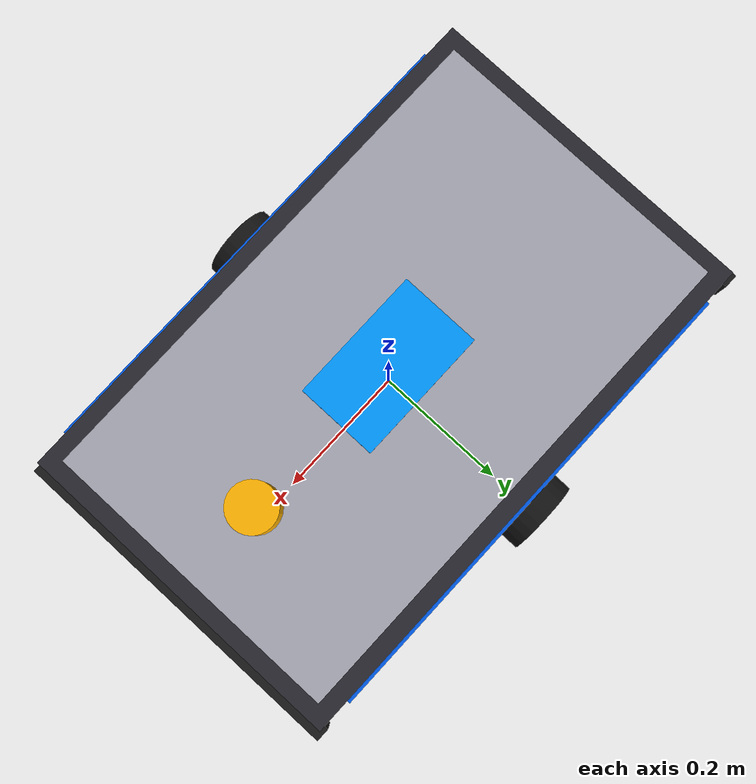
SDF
<?xml version="1.0" ?>
<sdf version="1.6">
  <model name="aria_agv">
    <static>false</static>

    <link name="base_footprint"/>

    <link name="base_link">
      <pose>0 0 0.08 0 0 0</pose>
      <inertial>
        <mass>80.0</mass>
        <inertia>
          <ixx>1.5</ixx><iyy>2.0</iyy><izz>2.5</izz>
          <ixy>0</ixy><ixz>0</ixz><iyz>0</iyz>
        </inertia>
      </inertial>

      <!-- Main chassis - dark gunmetal -->
      <collision name="chassis_col">
        <geometry><box><size>0.8 0.5 0.14</size></box></geometry>
      </collision>
      <visual name="chassis">
        <geometry><box><size>0.8 0.5 0.14</size></box></geometry>
        <material>
          <ambient>0.12 0.12 0.14 1</ambient>
          <diffuse>0.15 0.15 0.18 1</diffuse>
          <specular>0.4 0.4 0.4 1</specular>
        </material>
      </visual>

      <!-- Top deck - brushed aluminum -->
      <visual name="top_deck">
        <pose>0 0 0.075 0 0 0</pose>
        <geometry><box><size>0.75 0.45 0.01</size></box></geometry>
        <material>
          <ambient>0.55 0.55 0.6 1</ambient>
          <diffuse>0.65 0.65 0.7 1</diffuse>
          <specular>0.8 0.8 0.8 1</specular>
        </material>
      </visual>

      <!-- Orange safety stripe front -->
      <visual name="stripe_front">
        <pose>0.38 0 0.02 0 0 0</pose>
        <geometry><box><size>0.04 0.5 0.1</size></box></geometry>
        <material>
          <ambient>0.9 0.4 0.0 1</ambient>
          <diffuse>1.0 0.45 0.0 1</diffuse>
          <emissive>0.3 0.1 0.0 1</emissive>
        </material>
      </visual>

      <!-- Orange safety stripe rear -->
      <visual name="stripe_rear">
        <pose>-0.38 0 0.02 0 0 0</pose>
        <geometry><box><size>0.04 0.5 0.1</size></box></geometry>
        <material>
          <ambient>0.9 0.4 0.0 1</ambient>
          <diffuse>1.0 0.45 0.0 1</diffuse>
          <emissive>0.3 0.1 0.0 1</emissive>
        </material>
      </visual>

      <!-- Blue company stripe -->
      <visual name="stripe_side_left">
        <pose>0 0.24 0.02 0 0 0</pose>
        <geometry><box><size>0.7 0.03 0.08</size></box></geometry>
        <material>
          <ambient>0.0 0.3 0.8 1</ambient>
          <diffuse>0.0 0.35 0.9 1</diffuse>
          <emissive>0.0 0.05 0.2 1</emissive>
        </material>
      </visual>
      <visual name="stripe_side_right">
        <pose>0 -0.24 0.02 0 0 0</pose>
        <geometry><box><size>0.7 0.03 0.08</size></box></geometry>
        <material>
          <ambient>0.0 0.3 0.8 1</ambient>
          <diffuse>0.0 0.35 0.9 1</diffuse>
          <emissive>0.0 0.05 0.2 1</emissive>
        </material>
      </visual>

      <!-- Safety beacon light -->
      <visual name="beacon">
        <pose>0.25 0 0.1 0 0 0</pose>
        <geometry><cylinder><radius>0.035</radius><length>0.07</length></cylinder></geometry>
        <material>
          <ambient>1.0 0.6 0.0 1</ambient>
          <diffuse>1.0 0.7 0.0 1</diffuse>
          <emissive>0.8 0.4 0.0 1</emissive>
        </material>
      </visual>

      <!-- ARIA logo plate -->
      <visual name="logo_plate">
        <pose>0 0 0.082 0 0 0</pose>
        <geometry><box><size>0.2 0.12 0.002</size></box></geometry>
        <material>
          <ambient>0.0 0.5 0.9 1</ambient>
          <diffuse>0.0 0.6 1.0 1</diffuse>
          <emissive>0.0 0.2 0.4 1</emissive>
        </material>
      </visual>

      <!-- Bumper front -->
      <visual name="bumper_front">
        <pose>0.41 0 -0.02 0 0 0</pose>
        <geometry><box><size>0.02 0.52 0.06</size></box></geometry>
        <material>
          <ambient>0.08 0.08 0.08 1</ambient>
          <diffuse>0.1 0.1 0.1 1</diffuse>
        </material>
      </visual>

      <!-- Bumper rear -->
      <visual name="bumper_rear">
        <pose>-0.41 0 -0.02 0 0 0</pose>
        <geometry><box><size>0.02 0.52 0.06</size></box></geometry>
        <material>
          <ambient>0.08 0.08 0.08 1</ambient>
          <diffuse>0.1 0.1 0.1 1</diffuse>
        </material>
      </visual>
    </link>

    <joint name="base_joint" type="fixed">
      <parent>base_footprint</parent>
      <child>base_link</child>
    </joint>

    <!-- Left drive wheel - rubber black -->
    <link name="wheel_left">
      <pose>0.0 0.26 0.04 -1.5708 0 0</pose>
      <inertial><mass>2.0</mass>
        <inertia><ixx>0.02</ixx><iyy>0.02</iyy><izz>0.02</izz></inertia>
      </inertial>
      <collision name="col">
        <geometry><cylinder><radius>0.055</radius><length>0.055</length></cylinder></geometry>
        <surface><friction><ode><mu>100</mu><mu2>50</mu2></ode></friction></surface>
      </collision>
      <visual name="tire">
        <geometry><cylinder><radius>0.055</radius><length>0.055</length></cylinder></geometry>
        <material><ambient>0.05 0.05 0.05 1</ambient><diffuse>0.08 0.08 0.08 1</diffuse>
          <specular>0.1 0.1 0.1 1</specular></material>
      </visual>
      <visual name="hub">
        <pose>0 0 0 0 0 0</pose>
        <geometry><cylinder><radius>0.025</radius><length>0.056</length></cylinder></geometry>
        <material><ambient>0.5 0.5 0.55 1</ambient><diffuse>0.6 0.6 0.65 1</diffuse></material>
      </visual>
    </link>
    <joint name="wheel_left_joint" type="revolute">
      <parent>base_link</parent><child>wheel_left</child>
      <axis><xyz>0 0 1</xyz><limit><effort>200</effort></limit></axis>
    </joint>

    <!-- Right drive wheel -->
    <link name="wheel_right">
      <pose>0.0 -0.26 0.04 -1.5708 0 0</pose>
      <inertial><mass>2.0</mass>
        <inertia><ixx>0.02</ixx><iyy>0.02</iyy><izz>0.02</izz></inertia>
      </inertial>
      <collision name="col">
        <geometry><cylinder><radius>0.055</radius><length>0.055</length></cylinder></geometry>
        <surface><friction><ode><mu>100</mu><mu2>50</mu2></ode></friction></surface>
      </collision>
      <visual name="tire">
        <geometry><cylinder><radius>0.055</radius><length>0.055</length></cylinder></geometry>
        <material><ambient>0.05 0.05 0.05 1</ambient><diffuse>0.08 0.08 0.08 1</diffuse>
          <specular>0.1 0.1 0.1 1</specular></material>
      </visual>
      <visual name="hub">
        <geometry><cylinder><radius>0.025</radius><length>0.056</length></cylinder></geometry>
        <material><ambient>0.5 0.5 0.55 1</ambient><diffuse>0.6 0.6 0.65 1</diffuse></material>
      </visual>
    </link>
    <joint name="wheel_right_joint" type="revolute">
      <parent>base_link</parent><child>wheel_right</child>
      <axis><xyz>0 0 1</xyz><limit><effort>200</effort></limit></axis>
    </joint>

    <!-- Front caster -->
    <link name="caster_front">
      <pose>0.32 0 0.018 0 0 0</pose>
      <inertial><mass>0.5</mass>
        <inertia><ixx>0.001</ixx><iyy>0.001</iyy><izz>0.001</izz></inertia>
      </inertial>
      <collision name="col">
        <geometry><sphere><radius>0.022</radius></sphere></geometry>
        <surface><friction><ode><mu>0.01</mu><mu2>0.01</mu2></ode></friction></surface>
      </collision>
      <visual name="v">
        <geometry><sphere><radius>0.022</radius></sphere></geometry>
        <material><ambient>0.3 0.3 0.3 1</ambient></material>
      </visual>
    </link>
    <joint name="caster_front_joint" type="fixed">
      <parent>base_link</parent><child>caster_front</child>
    </joint>

    <!-- Rear caster -->
    <link name="caster_rear">
      <pose>-0.32 0 0.018 0 0 0</pose>
      <inertial><mass>0.5</mass>
        <inertia><ixx>0.001</ixx><iyy>0.001</iyy><izz>0.001</izz></inertia>
      </inertial>
      <collision name="col">
        <geometry><sphere><radius>0.022</radius></sphere></geometry>
        <surface><friction><ode><mu>0.01</mu><mu2>0.01</mu2></ode></friction></surface>
      </collision>
      <visual name="v">
        <geometry><sphere><radius>0.022</radius></sphere></geometry>
        <material><ambient>0.3 0.3 0.3 1</ambient></material>
      </visual>
    </link>
    <joint name="caster_rear_joint" type="fixed">
      <parent>base_link</parent><child>caster_rear</child>
    </joint>

    <!-- Diff drive plugin -->
    <plugin name="diff_drive" filename="libgazebo_ros_diff_drive.so">
      <ros><namespace>ROBOT_NS</namespace><remapping>odom:=odom</remapping></ros>
      <node_name>diff_drive</node_name>
      <left_joint>wheel_left_joint</left_joint>
      <right_joint>wheel_right_joint</right_joint>
      <wheel_separation>0.52</wheel_separation>
      <wheel_diameter>0.11</wheel_diameter>
      <max_wheel_torque>100</max_wheel_torque>
      <max_wheel_acceleration>2.0</max_wheel_acceleration>
      <publish_odom>true</publish_odom>
      <publish_odom_tf>true</publish_odom_tf>
      <publish_wheel_tf>false</publish_wheel_tf>
      <odometry_frame>odom</odometry_frame>
      <robot_base_frame>base_footprint</robot_base_frame>
    </plugin>

  </model>
</sdf>
